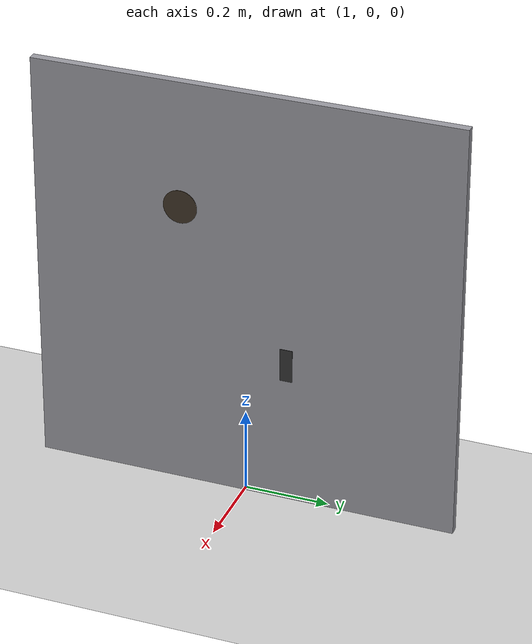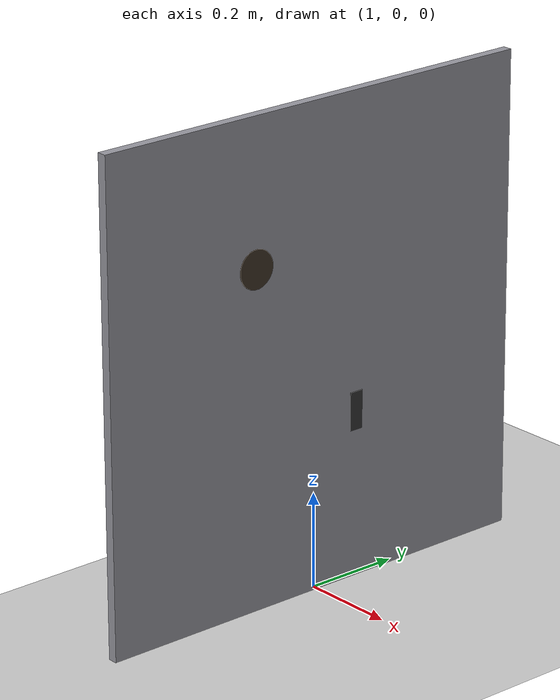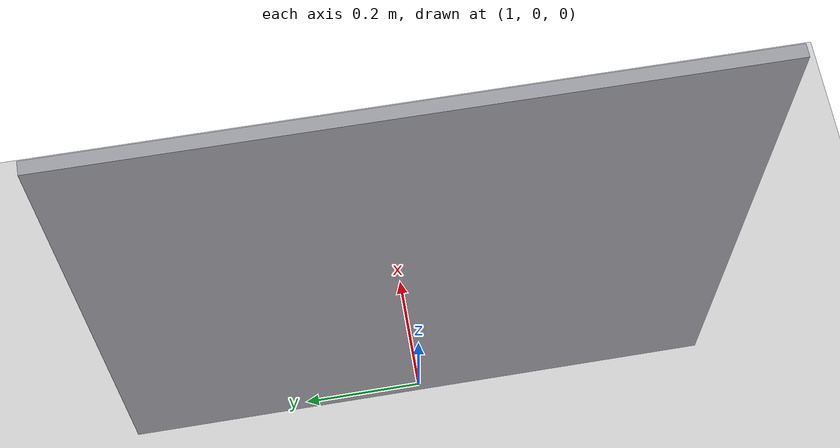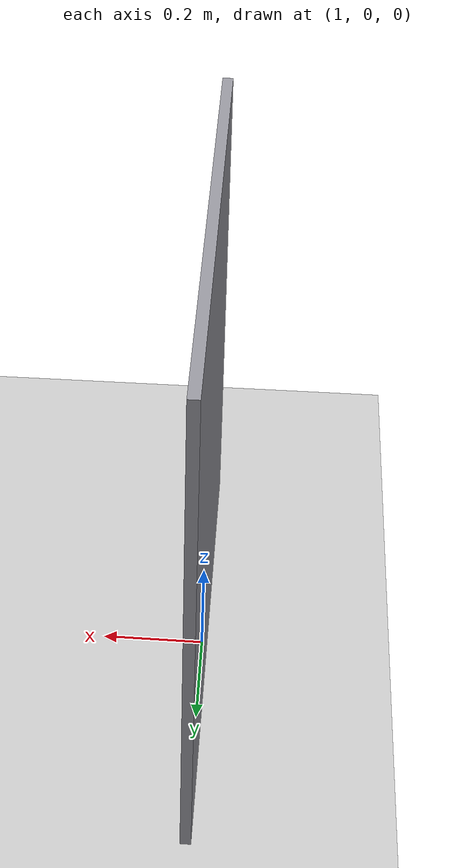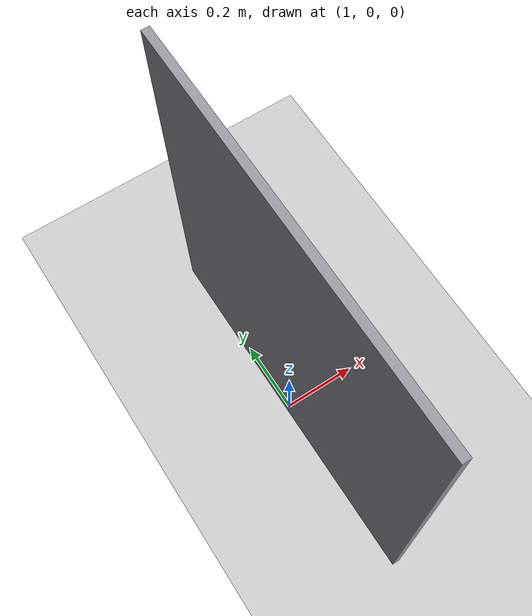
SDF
<?xml version="1.0" ?>
<sdf version="1.7">
  <world name="panel_world">
    <include>
      <uri>model://sun</uri>
    </include>
    <include>
      <uri>model://ground_plane</uri>
    </include>

    <model name="panel">
      <static>true</static>
      <pose>1 0 0.5 0 1.5708 0</pose>
      <link name="panel_link">
        <collision name="collision">
          <geometry>
            <box><size>1.0 1.0 0.02</size></box>
          </geometry>
        </collision>
        <visual name="visual">
          <geometry>
            <box><size>1.0 1.0 0.02</size></box>
          </geometry>
          <material>
            <ambient>0.6 0.6 0.63 1</ambient>
            <diffuse>0.6 0.6 0.63 1</diffuse>
          </material>
        </visual>

        <!-- Visual-only defect patches: darker boxes slightly proud of the
             panel surface, standing in for scratches/corrosion/paint chips. -->
        <visual name="defect_patch_1">
          <pose>0.15 0.1 0.011 0 0 0</pose>
          <geometry>
            <box><size>0.08 0.03 0.001</size></box>
          </geometry>
          <material>
            <ambient>0.2 0.2 0.2 1</ambient>
            <diffuse>0.2 0.2 0.2 1</diffuse>
          </material>
        </visual>
        <visual name="defect_patch_2">
          <pose>-0.2 -0.15 0.011 0 0 0.4</pose>
          <geometry>
            <cylinder><radius>0.04</radius><length>0.001</length></cylinder>
          </geometry>
          <material>
            <ambient>0.25 0.2 0.15 1</ambient>
            <diffuse>0.25 0.2 0.15 1</diffuse>
          </material>
        </visual>
      </link>
    </model>

    <model name="fixed_camera">
      <static>true</static>
      <pose>0 0 0.5 0 0 0</pose>
      <link name="camera_link">
        <sensor name="camera" type="camera">
          <camera>
            <horizontal_fov>1.047</horizontal_fov>
            <image>
              <width>512</width>
              <height>512</height>
              <format>R8G8B8</format>
            </image>
            <clip>
              <near>0.05</near>
              <far>10</far>
            </clip>
          </camera>
          <always_on>true</always_on>
          <update_rate>15</update_rate>
          <visualize>true</visualize>
          <plugin name="camera_plugin" filename="libgazebo_ros_camera.so">
            <ros>
              <namespace>/</namespace>
              <remapping>image_raw:=camera/image_raw</remapping>
              <remapping>camera_info:=camera/camera_info</remapping>
            </ros>
            <camera_name>camera</camera_name>
            <frame_name>camera_link</frame_name>
            <update_rate>15</update_rate>
          </plugin>
        </sensor>
      </link>
    </model>
  </world>
</sdf>
